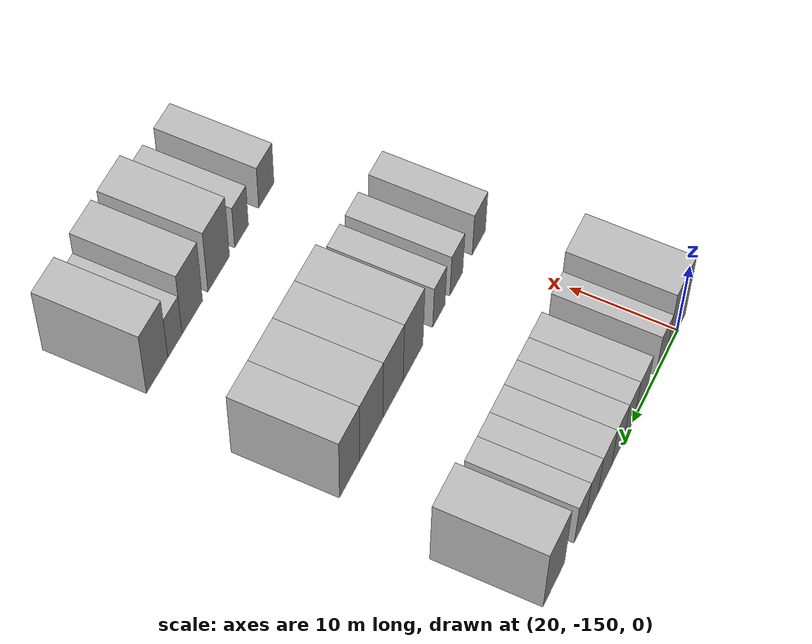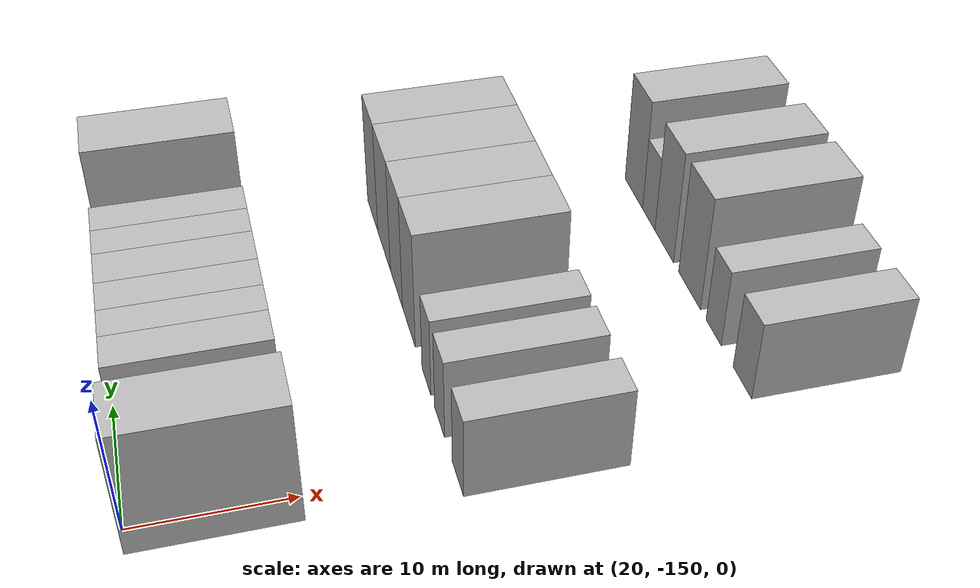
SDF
<sdf version="1.6">
 <world name="default">
  <model name="building_23">
   <static>1</static>
   <pose>25.0000 -149.6617 0 0.000000 0.000000 0.000000</pose>
   <link name="link">
    <pose>0 0 4.50 0 0 0</pose>
    <collision name="collision"><geometry><box><size>10.0000 4.2517 9.0000</size></box></geometry></collision>
    <visual name="visual">
     <cast_shadows>0</cast_shadows>
     <geometry><box><size>10.0000 4.2517 9.0000</size></box></geometry>
     <material>
      <script>
       <uri>model://HANNAS_wall/materials/scripts</uri>
       <uri>model://HANNAS_wall/materials/textures</uri>
       <name>vrc/HANNAS_wall</name>
      </script>
     </material>
    </visual>
   </link>
  </model>
  <model name="building_24">
   <static>1</static>
   <pose>25.0000 -146.3111 0 0.000000 0.000000 0.000000</pose>
   <link name="link">
    <pose>0 0 3.00 0 0 0</pose>
    <collision name="collision"><geometry><box><size>10.0000 2.4495 6.0000</size></box></geometry></collision>
    <visual name="visual">
     <cast_shadows>0</cast_shadows>
     <geometry><box><size>10.0000 2.4495 6.0000</size></box></geometry>
     <material>
      <script>
       <uri>model://HANNAS_wall/materials/scripts</uri>
       <uri>model://HANNAS_wall/materials/textures</uri>
       <name>vrc/HANNAS_wall</name>
      </script>
     </material>
    </visual>
   </link>
  </model>
  <model name="building_25">
   <static>1</static>
   <pose>25.0000 -141.7247 0 0.000000 0.000000 0.000000</pose>
   <link name="link">
    <pose>0 0 3.00 0 0 0</pose>
    <collision name="collision"><geometry><box><size>10.0000 2.7232 6.0000</size></box></geometry></collision>
    <visual name="visual">
     <cast_shadows>0</cast_shadows>
     <geometry><box><size>10.0000 2.7232 6.0000</size></box></geometry>
     <material>
      <script>
       <uri>model://HANNAS_wall/materials/scripts</uri>
       <uri>model://HANNAS_wall/materials/textures</uri>
       <name>vrc/HANNAS_wall</name>
      </script>
     </material>
    </visual>
   </link>
  </model>
  <model name="building_26">
   <static>1</static>
   <pose>25.0000 -139.1629 0 0.000000 0.000000 0.000000</pose>
   <link name="link">
    <pose>0 0 3.00 0 0 0</pose>
    <collision name="collision"><geometry><box><size>10.0000 2.4004 6.0000</size></box></geometry></collision>
    <visual name="visual">
     <cast_shadows>0</cast_shadows>
     <geometry><box><size>10.0000 2.4004 6.0000</size></box></geometry>
     <material>
      <script>
       <uri>model://HANNAS_wall/materials/scripts</uri>
       <uri>model://HANNAS_wall/materials/textures</uri>
       <name>vrc/HANNAS_wall</name>
      </script>
     </material>
    </visual>
   </link>
  </model>
  <model name="building_27">
   <static>1</static>
   <pose>25.0000 -136.6651 0 0.000000 0.000000 0.000000</pose>
   <link name="link">
    <pose>0 0 3.00 0 0 0</pose>
    <collision name="collision"><geometry><box><size>10.0000 2.5952 6.0000</size></box></geometry></collision>
    <visual name="visual">
     <cast_shadows>0</cast_shadows>
     <geometry><box><size>10.0000 2.5952 6.0000</size></box></geometry>
     <material>
      <script>
       <uri>model://HANNAS_wall/materials/scripts</uri>
       <uri>model://HANNAS_wall/materials/textures</uri>
       <name>vrc/HANNAS_wall</name>
      </script>
     </material>
    </visual>
   </link>
  </model>
  <model name="building_28">
   <static>1</static>
   <pose>25.0000 -133.9143 0 0.000000 0.000000 0.000000</pose>
   <link name="link">
    <pose>0 0 3.00 0 0 0</pose>
    <collision name="collision"><geometry><box><size>10.0000 2.9065 6.0000</size></box></geometry></collision>
    <visual name="visual">
     <cast_shadows>0</cast_shadows>
     <geometry><box><size>10.0000 2.9065 6.0000</size></box></geometry>
     <material>
      <script>
       <uri>model://HANNAS_wall/materials/scripts</uri>
       <uri>model://HANNAS_wall/materials/textures</uri>
       <name>vrc/HANNAS_wall</name>
      </script>
     </material>
    </visual>
   </link>
  </model>
  <model name="building_29">
   <static>1</static>
   <pose>25.0000 -131.2215 0 0.000000 0.000000 0.000000</pose>
   <link name="link">
    <pose>0 0 3.00 0 0 0</pose>
    <collision name="collision"><geometry><box><size>10.0000 2.4790 6.0000</size></box></geometry></collision>
    <visual name="visual">
     <cast_shadows>0</cast_shadows>
     <geometry><box><size>10.0000 2.4790 6.0000</size></box></geometry>
     <material>
      <script>
       <uri>model://HANNAS_wall/materials/scripts</uri>
       <uri>model://HANNAS_wall/materials/textures</uri>
       <name>vrc/HANNAS_wall</name>
      </script>
     </material>
    </visual>
   </link>
  </model>
  <model name="building_30">
   <static>1</static>
   <pose>25.0000 -128.7244 0 0.000000 0.000000 0.000000</pose>
   <link name="link">
    <pose>0 0 3.00 0 0 0</pose>
    <collision name="collision"><geometry><box><size>10.0000 2.5151 6.0000</size></box></geometry></collision>
    <visual name="visual">
     <cast_shadows>0</cast_shadows>
     <geometry><box><size>10.0000 2.5151 6.0000</size></box></geometry>
     <material>
      <script>
       <uri>model://HANNAS_wall/materials/scripts</uri>
       <uri>model://HANNAS_wall/materials/textures</uri>
       <name>vrc/HANNAS_wall</name>
      </script>
     </material>
    </visual>
   </link>
  </model>
  <model name="building_31">
   <static>1</static>
   <pose>25.0000 -123.2932 0 0.000000 0.000000 0.000000</pose>
   <link name="link">
    <pose>0 0 4.50 0 0 0</pose>
    <collision name="collision"><geometry><box><size>10.0000 4.3473 9.0000</size></box></geometry></collision>
    <visual name="visual">
     <cast_shadows>0</cast_shadows>
     <geometry><box><size>10.0000 4.3473 9.0000</size></box></geometry>
     <material>
      <script>
       <uri>model://HANNAS_wall/materials/scripts</uri>
       <uri>model://HANNAS_wall/materials/textures</uri>
       <name>vrc/HANNAS_wall</name>
      </script>
     </material>
    </visual>
   </link>
  </model>
  <model name="building_139">
   <static>1</static>
   <pose>44.0000 -150.8597 0 0.000000 0.000000 0.000000</pose>
   <link name="link">
    <pose>0 0 3.00 0 0 0</pose>
    <collision name="collision"><geometry><box><size>10.0000 2.7875 6.0000</size></box></geometry></collision>
    <visual name="visual">
     <cast_shadows>0</cast_shadows>
     <geometry><box><size>10.0000 2.7875 6.0000</size></box></geometry>
     <material>
      <script>
       <uri>model://HANNAS_wall/materials/scripts</uri>
       <uri>model://HANNAS_wall/materials/textures</uri>
       <name>vrc/HANNAS_wall</name>
      </script>
     </material>
    </visual>
   </link>
  </model>
  <model name="building_140">
   <static>1</static>
   <pose>44.0000 -146.1285 0 0.000000 0.000000 0.000000</pose>
   <link name="link">
    <pose>0 0 3.00 0 0 0</pose>
    <collision name="collision"><geometry><box><size>10.0000 2.6749 6.0000</size></box></geometry></collision>
    <visual name="visual">
     <cast_shadows>0</cast_shadows>
     <geometry><box><size>10.0000 2.6749 6.0000</size></box></geometry>
     <material>
      <script>
       <uri>model://HANNAS_wall/materials/scripts</uri>
       <uri>model://HANNAS_wall/materials/textures</uri>
       <name>vrc/HANNAS_wall</name>
      </script>
     </material>
    </visual>
   </link>
  </model>
  <model name="building_141">
   <static>1</static>
   <pose>44.0000 -142.5231 0 0.000000 0.000000 0.000000</pose>
   <link name="link">
    <pose>0 0 3.00 0 0 0</pose>
    <collision name="collision"><geometry><box><size>10.0000 2.5359 6.0000</size></box></geometry></collision>
    <visual name="visual">
     <cast_shadows>0</cast_shadows>
     <geometry><box><size>10.0000 2.5359 6.0000</size></box></geometry>
     <material>
      <script>
       <uri>model://HANNAS_wall/materials/scripts</uri>
       <uri>model://HANNAS_wall/materials/textures</uri>
       <name>vrc/HANNAS_wall</name>
      </script>
     </material>
    </visual>
   </link>
  </model>
  <model name="building_142">
   <static>1</static>
   <pose>44.0000 -137.2744 0 0.000000 0.000000 0.000000</pose>
   <link name="link">
    <pose>0 0 4.50 0 0 0</pose>
    <collision name="collision"><geometry><box><size>10.0000 3.9614 9.0000</size></box></geometry></collision>
    <visual name="visual">
     <cast_shadows>0</cast_shadows>
     <geometry><box><size>10.0000 3.9614 9.0000</size></box></geometry>
     <material>
      <script>
       <uri>model://HANNAS_wall/materials/scripts</uri>
       <uri>model://HANNAS_wall/materials/textures</uri>
       <name>vrc/HANNAS_wall</name>
      </script>
     </material>
    </visual>
   </link>
  </model>
  <model name="building_143">
   <static>1</static>
   <pose>44.0000 -133.2879 0 0.000000 0.000000 0.000000</pose>
   <link name="link">
    <pose>0 0 4.50 0 0 0</pose>
    <collision name="collision"><geometry><box><size>10.0000 4.0117 9.0000</size></box></geometry></collision>
    <visual name="visual">
     <cast_shadows>0</cast_shadows>
     <geometry><box><size>10.0000 4.0117 9.0000</size></box></geometry>
     <material>
      <script>
       <uri>model://HANNAS_wall/materials/scripts</uri>
       <uri>model://HANNAS_wall/materials/textures</uri>
       <name>vrc/HANNAS_wall</name>
      </script>
     </material>
    </visual>
   </link>
  </model>
  <model name="building_144">
   <static>1</static>
   <pose>44.0000 -129.0431 0 0.000000 0.000000 0.000000</pose>
   <link name="link">
    <pose>0 0 4.50 0 0 0</pose>
    <collision name="collision"><geometry><box><size>10.0000 4.4779 9.0000</size></box></geometry></collision>
    <visual name="visual">
     <cast_shadows>0</cast_shadows>
     <geometry><box><size>10.0000 4.4779 9.0000</size></box></geometry>
     <material>
      <script>
       <uri>model://HANNAS_wall/materials/scripts</uri>
       <uri>model://HANNAS_wall/materials/textures</uri>
       <name>vrc/HANNAS_wall</name>
      </script>
     </material>
    </visual>
   </link>
  </model>
  <model name="building_145">
   <static>1</static>
   <pose>44.0000 -124.8948 0 0.000000 0.000000 0.000000</pose>
   <link name="link">
    <pose>0 0 4.50 0 0 0</pose>
    <collision name="collision"><geometry><box><size>10.0000 3.8187 9.0000</size></box></geometry></collision>
    <visual name="visual">
     <cast_shadows>0</cast_shadows>
     <geometry><box><size>10.0000 3.8187 9.0000</size></box></geometry>
     <material>
      <script>
       <uri>model://HANNAS_wall/materials/scripts</uri>
       <uri>model://HANNAS_wall/materials/textures</uri>
       <name>vrc/HANNAS_wall</name>
      </script>
     </material>
    </visual>
   </link>
  </model>
  <model name="building_259">
   <static>1</static>
   <pose>63.0000 -147.3782 0 0.000000 0.000000 0.000000</pose>
   <link name="link">
    <pose>0 0 3.00 0 0 0</pose>
    <collision name="collision"><geometry><box><size>10.0000 2.9839 6.0000</size></box></geometry></collision>
    <visual name="visual">
     <cast_shadows>0</cast_shadows>
     <geometry><box><size>10.0000 2.9839 6.0000</size></box></geometry>
     <material>
      <script>
       <uri>model://HANNAS_wall/materials/scripts</uri>
       <uri>model://HANNAS_wall/materials/textures</uri>
       <name>vrc/HANNAS_wall</name>
      </script>
     </material>
    </visual>
   </link>
  </model>
  <model name="building_260">
   <static>1</static>
   <pose>63.0000 -142.5680 0 0.000000 0.000000 0.000000</pose>
   <link name="link">
    <pose>0 0 3.00 0 0 0</pose>
    <collision name="collision"><geometry><box><size>10.0000 2.6364 6.0000</size></box></geometry></collision>
    <visual name="visual">
     <cast_shadows>0</cast_shadows>
     <geometry><box><size>10.0000 2.6364 6.0000</size></box></geometry>
     <material>
      <script>
       <uri>model://HANNAS_wall/materials/scripts</uri>
       <uri>model://HANNAS_wall/materials/textures</uri>
       <name>vrc/HANNAS_wall</name>
      </script>
     </material>
    </visual>
   </link>
  </model>
  <model name="building_261">
   <static>1</static>
   <pose>63.0000 -138.2088 0 0.000000 0.000000 0.000000</pose>
   <link name="link">
    <pose>0 0 4.50 0 0 0</pose>
    <collision name="collision"><geometry><box><size>10.0000 4.0820 9.0000</size></box></geometry></collision>
    <visual name="visual">
     <cast_shadows>0</cast_shadows>
     <geometry><box><size>10.0000 4.0820 9.0000</size></box></geometry>
     <material>
      <script>
       <uri>model://HANNAS_wall/materials/scripts</uri>
       <uri>model://HANNAS_wall/materials/textures</uri>
       <name>vrc/HANNAS_wall</name>
      </script>
     </material>
    </visual>
   </link>
  </model>
  <model name="building_262">
   <static>1</static>
   <pose>63.0000 -133.2863 0 0.000000 0.000000 0.000000</pose>
   <link name="link">
    <pose>0 0 4.50 0 0 0</pose>
    <collision name="collision"><geometry><box><size>10.0000 3.7630 9.0000</size></box></geometry></collision>
    <visual name="visual">
     <cast_shadows>0</cast_shadows>
     <geometry><box><size>10.0000 3.7630 9.0000</size></box></geometry>
     <material>
      <script>
       <uri>model://HANNAS_wall/materials/scripts</uri>
       <uri>model://HANNAS_wall/materials/textures</uri>
       <name>vrc/HANNAS_wall</name>
      </script>
     </material>
    </visual>
   </link>
  </model>
  <model name="building_263">
   <static>1</static>
   <pose>63.0000 -130.0971 0 0.000000 0.000000 0.000000</pose>
   <link name="link">
    <pose>0 0 3.00 0 0 0</pose>
    <collision name="collision"><geometry><box><size>10.0000 2.6153 6.0000</size></box></geometry></collision>
    <visual name="visual">
     <cast_shadows>0</cast_shadows>
     <geometry><box><size>10.0000 2.6153 6.0000</size></box></geometry>
     <material>
      <script>
       <uri>model://HANNAS_wall/materials/scripts</uri>
       <uri>model://HANNAS_wall/materials/textures</uri>
       <name>vrc/HANNAS_wall</name>
      </script>
     </material>
    </visual>
   </link>
  </model>
  <model name="building_264">
   <static>1</static>
   <pose>63.0000 -126.8576 0 0.000000 0.000000 0.000000</pose>
   <link name="link">
    <pose>0 0 4.50 0 0 0</pose>
    <collision name="collision"><geometry><box><size>10.0000 3.8638 9.0000</size></box></geometry></collision>
    <visual name="visual">
     <cast_shadows>0</cast_shadows>
     <geometry><box><size>10.0000 3.8638 9.0000</size></box></geometry>
     <material>
      <script>
       <uri>model://HANNAS_wall/materials/scripts</uri>
       <uri>model://HANNAS_wall/materials/textures</uri>
       <name>vrc/HANNAS_wall</name>
      </script>
     </material>
    </visual>
   </link>
  </model>
 </world>
</sdf>
